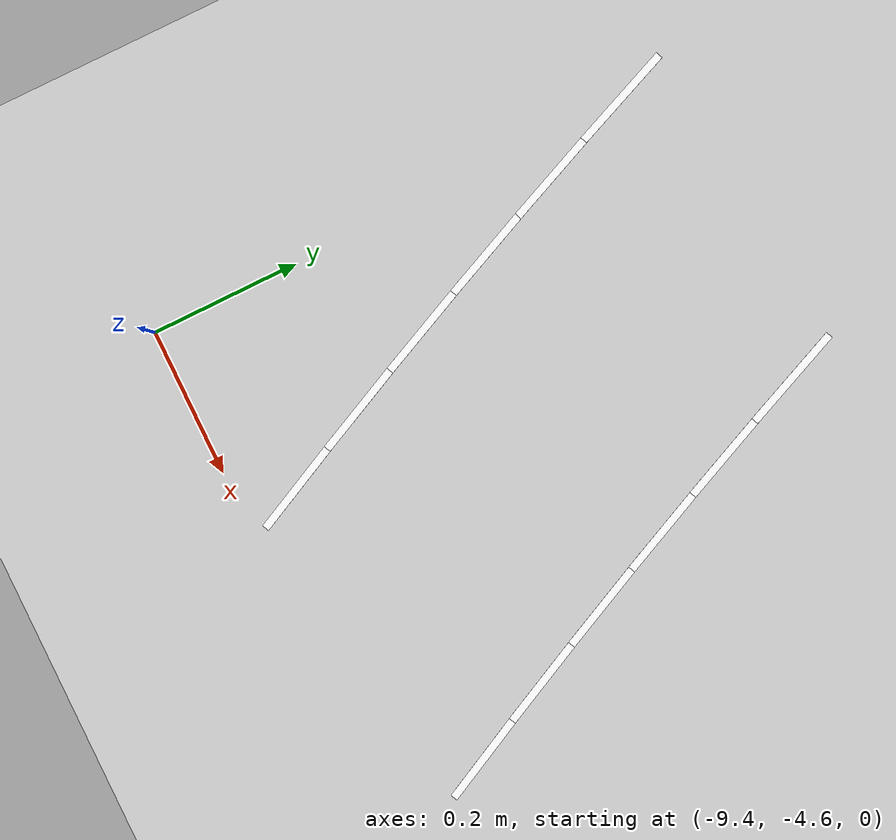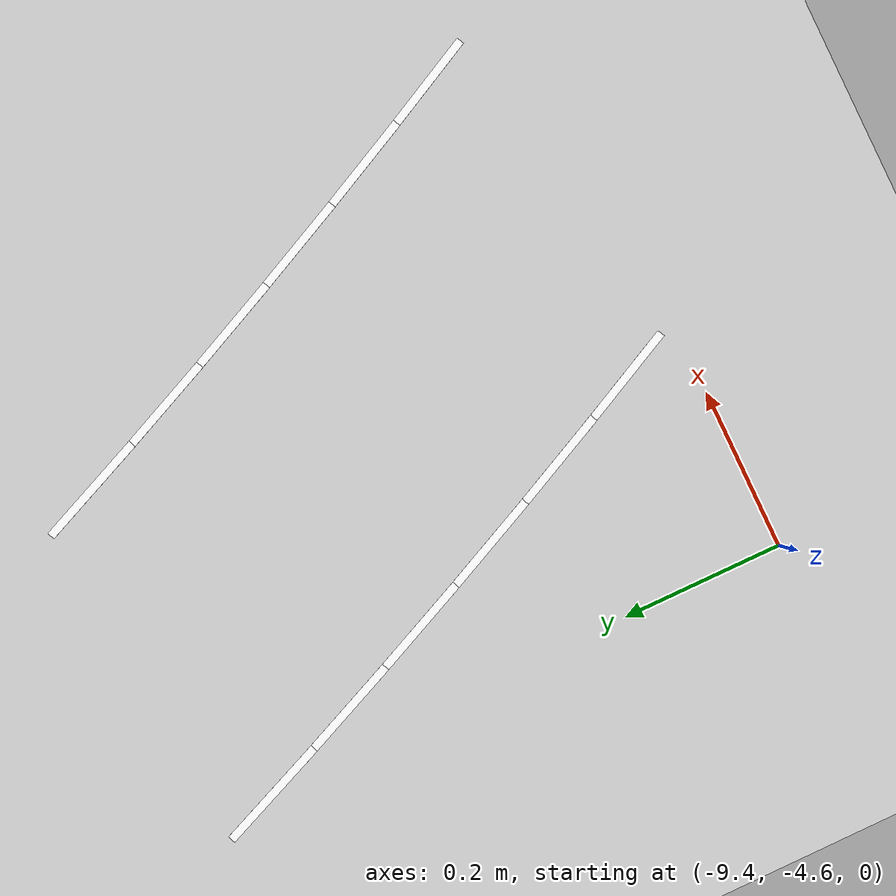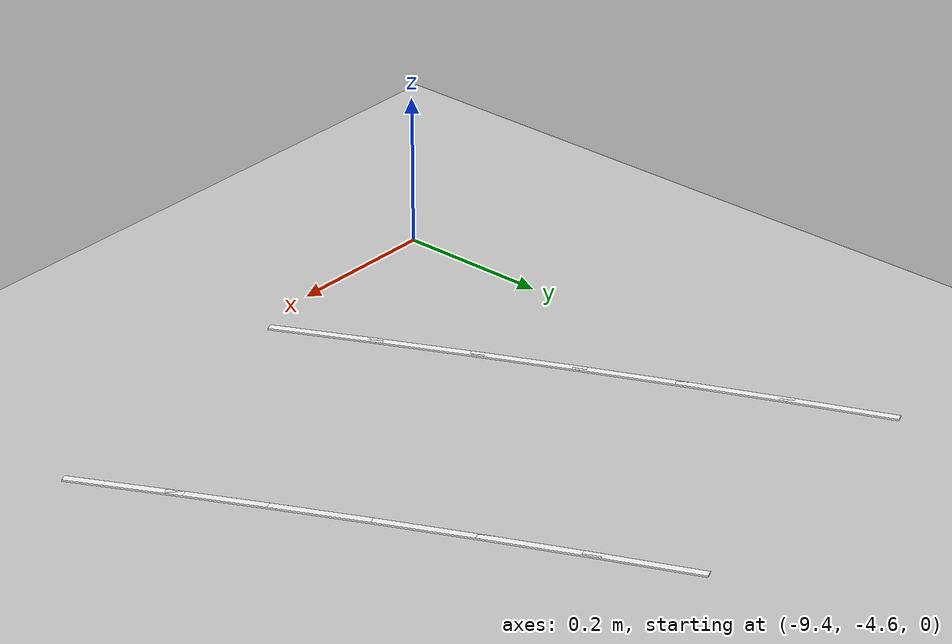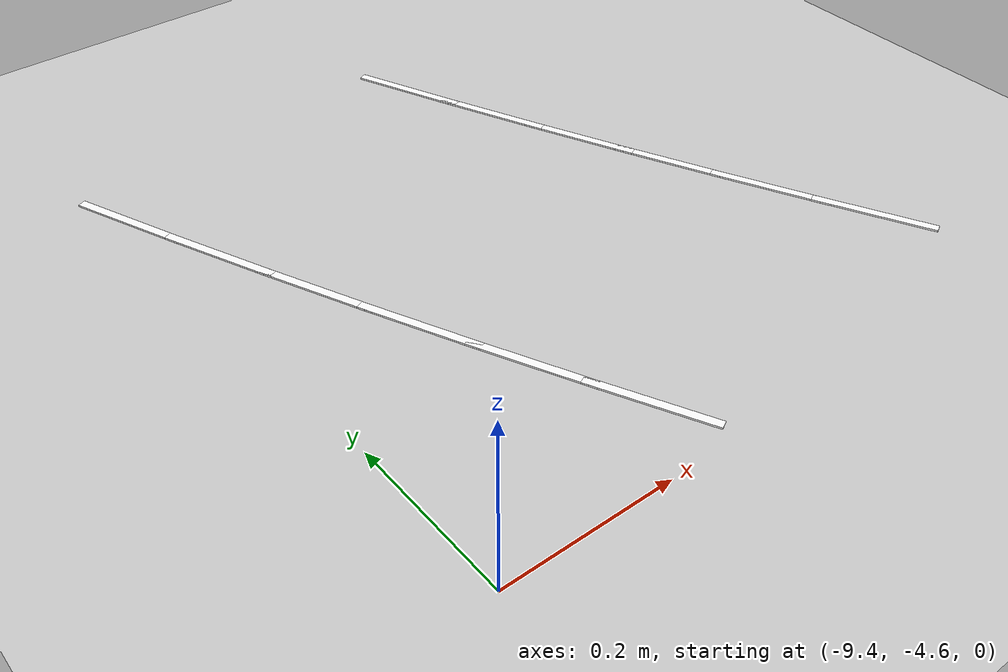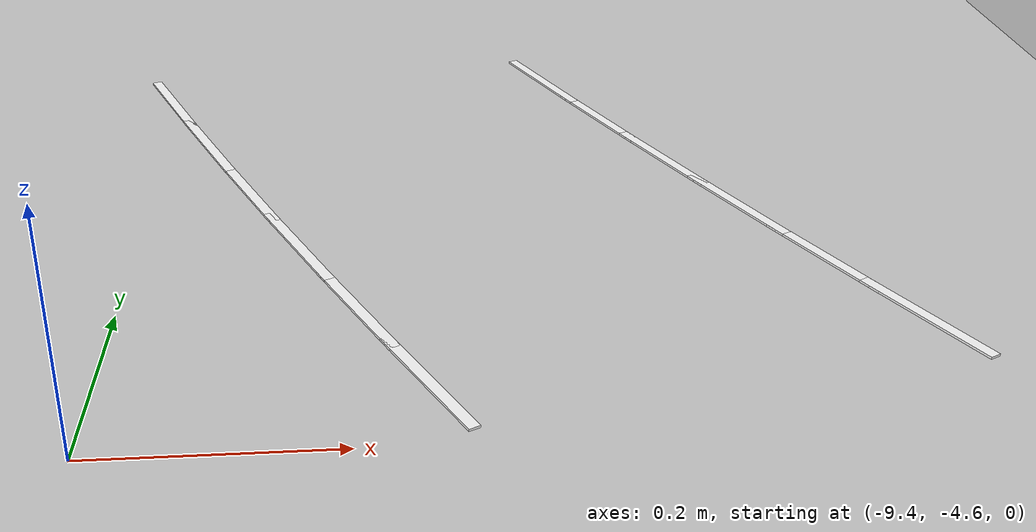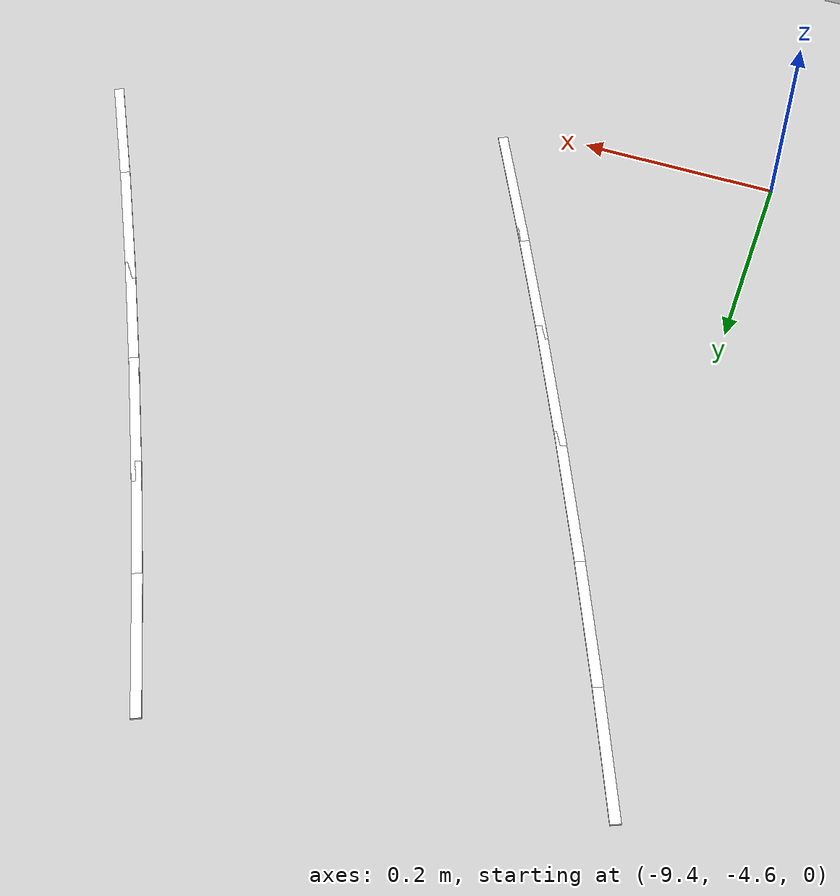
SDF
<sdf version="1.7">
 <world name="default">
  <model name="ground_plane">
   <static>1</static>
   <link name="link">
    <collision name="collision">
     <geometry><plane><normal>0 0 1</normal><size>100 100</size></plane></geometry>
     <surface>
      <contact><collide_bitmask>65535</collide_bitmask></contact>
      <friction><ode><mu>100</mu><mu2>50</mu2></ode></friction>
     </surface>
    </collision>
    <visual name="visual">
     <cast_shadows>0</cast_shadows>
     <geometry><plane><normal>0 0 1</normal><size>100 100</size></plane></geometry>
     <material>
      <script><uri>file://media/materials/scripts/gazebo.material</uri><name>Gazebo/Grey</name></script>
     </material>
    </visual>
   </link>
  </model>
  <model name="lane_line_right_281">
   <static>1</static>
   <link name="link">
    <pose>0 0 -0.004 0 -0 0</pose>
    <visual name="visual">
     <geometry><box><size>0.1457 0.01 0.01</size></box></geometry>
     <material><ambient>1 1 1 1</ambient><diffuse>1 1 1 1</diffuse></material>
    </visual>
    <collision name="collision"><geometry><box><size>0.1457 0.01 0.01</size></box></geometry></collision>
   </link>
   <pose>-9.41108 -3.93288 0 0 0 -1.17496</pose>
  </model>
  <model name="lane_line_left_282">
   <static>1</static>
   <link name="link">
    <pose>0 0 -0.004 0 -0 0</pose>
    <visual name="visual">
     <geometry><box><size>0.1457 0.01 0.01</size></box></geometry>
     <material><ambient>1 1 1 1</ambient><diffuse>1 1 1 1</diffuse></material>
    </visual>
    <collision name="collision"><geometry><box><size>0.1457 0.01 0.01</size></box></geometry></collision>
   </link>
   <pose>-8.99381 -3.89197 0 0 0 -1.16239</pose>
  </model>
  <model name="lane_line_right_282">
   <static>1</static>
   <link name="link">
    <pose>0 0 -0.004 0 -0 0</pose>
    <visual name="visual">
     <geometry><box><size>0.1457 0.01 0.01</size></box></geometry>
     <material><ambient>1 1 1 1</ambient><diffuse>1 1 1 1</diffuse></material>
    </visual>
    <collision name="collision"><geometry><box><size>0.1457 0.01 0.01</size></box></geometry></collision>
   </link>
   <pose>-9.36092 -4.05083 0 0 0 -1.16239</pose>
  </model>
  <model name="lane_line_left_283">
   <static>1</static>
   <link name="link">
    <pose>0 0 -0.004 0 -0 0</pose>
    <visual name="visual">
     <geometry><box><size>0.1457 0.01 0.01</size></box></geometry>
     <material><ambient>1 1 1 1</ambient><diffuse>1 1 1 1</diffuse></material>
    </visual>
    <collision name="collision"><geometry><box><size>0.1457 0.01 0.01</size></box></geometry></collision>
   </link>
   <pose>-8.9442 -4.00468 0 0 0 -1.14982</pose>
  </model>
  <model name="lane_line_right_283">
   <static>1</static>
   <link name="link">
    <pose>0 0 -0.004 0 -0 0</pose>
    <visual name="visual">
     <geometry><box><size>0.1457 0.01 0.01</size></box></geometry>
     <material><ambient>1 1 1 1</ambient><diffuse>1 1 1 1</diffuse></material>
    </visual>
    <collision name="collision"><geometry><box><size>0.1457 0.01 0.01</size></box></geometry></collision>
   </link>
   <pose>-9.30927 -4.16814 0 0 0 -1.14982</pose>
  </model>
  <model name="lane_line_left_284">
   <static>1</static>
   <link name="link">
    <pose>0 0 -0.004 0 -0 0</pose>
    <visual name="visual">
     <geometry><box><size>0.1457 0.01 0.01</size></box></geometry>
     <material><ambient>1 1 1 1</ambient><diffuse>1 1 1 1</diffuse></material>
    </visual>
    <collision name="collision"><geometry><box><size>0.1457 0.01 0.01</size></box></geometry></collision>
   </link>
   <pose>-8.89317 -4.11676 0 0 0 -1.13726</pose>
  </model>
  <model name="lane_line_right_284">
   <static>1</static>
   <link name="link">
    <pose>0 0 -0.004 0 -0 0</pose>
    <visual name="visual">
     <geometry><box><size>0.1457 0.01 0.01</size></box></geometry>
     <material><ambient>1 1 1 1</ambient><diffuse>1 1 1 1</diffuse></material>
    </visual>
    <collision name="collision"><geometry><box><size>0.1457 0.01 0.01</size></box></geometry></collision>
   </link>
   <pose>-9.25616 -4.28479 0 0 0 -1.13726</pose>
  </model>
  <model name="lane_line_left_285">
   <static>1</static>
   <link name="link">
    <pose>0 0 -0.004 0 -0 0</pose>
    <visual name="visual">
     <geometry><box><size>0.1457 0.01 0.01</size></box></geometry>
     <material><ambient>1 1 1 1</ambient><diffuse>1 1 1 1</diffuse></material>
    </visual>
    <collision name="collision"><geometry><box><size>0.1457 0.01 0.01</size></box></geometry></collision>
   </link>
   <pose>-8.84073 -4.22818 0 0 0 -1.12469</pose>
  </model>
  <model name="lane_line_right_285">
   <static>1</static>
   <link name="link">
    <pose>0 0 -0.004 0 -0 0</pose>
    <visual name="visual">
     <geometry><box><size>0.1457 0.01 0.01</size></box></geometry>
     <material><ambient>1 1 1 1</ambient><diffuse>1 1 1 1</diffuse></material>
    </visual>
    <collision name="collision"><geometry><box><size>0.1457 0.01 0.01</size></box></geometry></collision>
   </link>
   <pose>-9.20159 -4.40077 0 0 0 -1.12469</pose>
  </model>
  <model name="lane_line_left_286">
   <static>1</static>
   <link name="link">
    <pose>0 0 -0.004 0 -0 0</pose>
    <visual name="visual">
     <geometry><box><size>0.1457 0.01 0.01</size></box></geometry>
     <material><ambient>1 1 1 1</ambient><diffuse>1 1 1 1</diffuse></material>
    </visual>
    <collision name="collision"><geometry><box><size>0.1457 0.01 0.01</size></box></geometry></collision>
   </link>
   <pose>-8.78691 -4.33894 0 0 0 -1.11212</pose>
  </model>
  <model name="lane_line_right_286">
   <static>1</static>
   <link name="link">
    <pose>0 0 -0.004 0 -0 0</pose>
    <visual name="visual">
     <geometry><box><size>0.1457 0.01 0.01</size></box></geometry>
     <material><ambient>1 1 1 1</ambient><diffuse>1 1 1 1</diffuse></material>
    </visual>
    <collision name="collision"><geometry><box><size>0.1457 0.01 0.01</size></box></geometry></collision>
   </link>
   <pose>-9.14556 -4.51605 0 0 0 -1.11212</pose>
  </model>
  <model name="lane_line_left_287">
   <static>1</static>
   <link name="link">
    <pose>0 0 -0.004 0 -0 0</pose>
    <visual name="visual">
     <geometry><box><size>0.1457 0.01 0.01</size></box></geometry>
     <material><ambient>1 1 1 1</ambient><diffuse>1 1 1 1</diffuse></material>
    </visual>
    <collision name="collision"><geometry><box><size>0.1457 0.01 0.01</size></box></geometry></collision>
   </link>
   <pose>-8.73169 -4.44902 0 0 0 -1.09956</pose>
  </model>
 </world>
</sdf>
